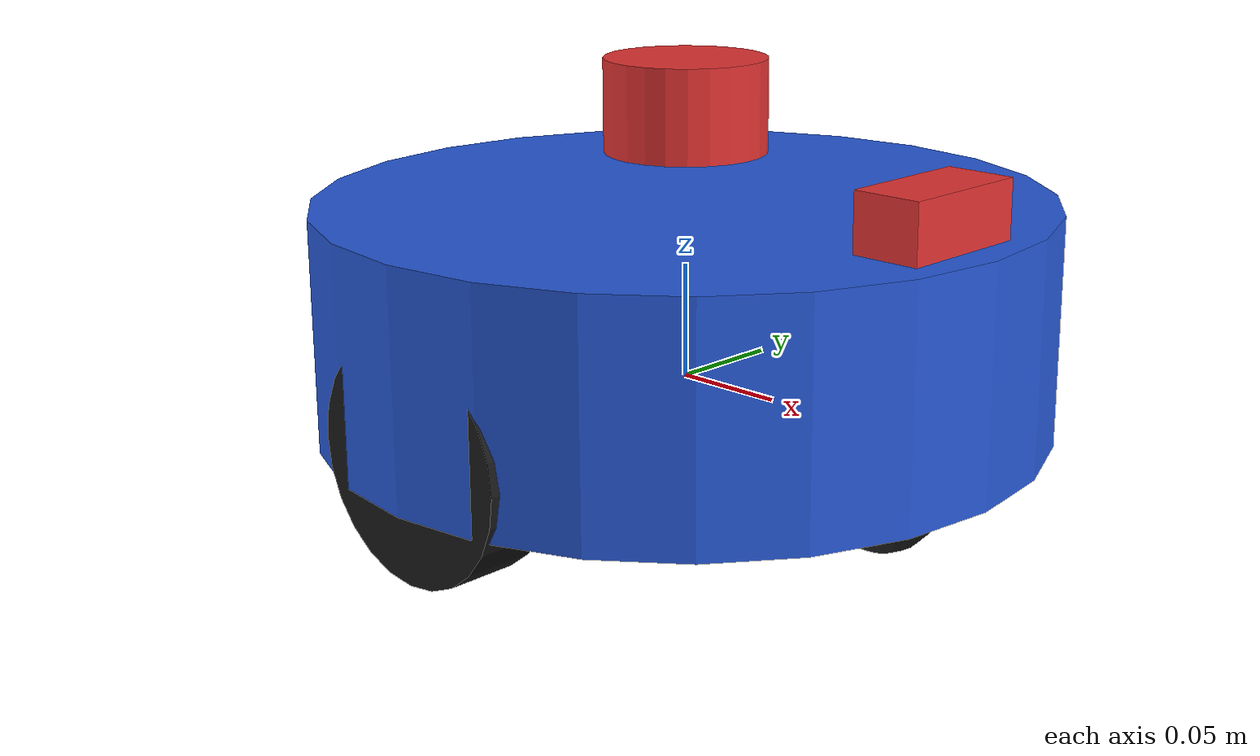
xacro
<?xml version="1.0"?>
<robot xmlns:xacro="http://www.ros.org/wiki/xacro" name="diffbot">

  <xacro:arg name="enable_camera" default="false"/>
  <!-- frame_id the lidar plugin stamps on /scan. MUST equal the link name "laser"; the arg exists only so
       scripts/fault_injection.sh can break it on purpose and show what happens. -->
  <xacro:arg name="lidar_frame" default="laser"/>

  <!-- ===================== parameters ===================== -->
  <xacro:property name="limits" value="${xacro.load_yaml('$(find robot_description)/config/robot_limits.yaml')}"/>
  <xacro:property name="v_max" value="${limits['/**']['ros__parameters']['max_linear_velocity']}"/>
  <xacro:property name="w_max" value="${limits['/**']['ros__parameters']['max_angular_velocity']}"/>

  <xacro:property name="base_radius" value="0.16"/>
  <xacro:property name="base_height" value="0.10"/>
  <xacro:property name="base_z"      value="0.03"/>   <!-- chassis center above base_link origin (axle height) -->
  <xacro:property name="base_mass"   value="5.0"/>

  <xacro:property name="wheel_radius" value="0.05"/>
  <xacro:property name="wheel_width"  value="0.03"/>
  <xacro:property name="wheel_y"      value="0.14"/>  <!-- wheel centre offset; wheel outer face stays inside the chassis radius -->
  <xacro:property name="wheel_mass"   value="0.5"/>

  <xacro:property name="caster_radius" value="0.025"/>
  <xacro:property name="caster_x"      value="0.11"/>
  <xacro:property name="caster_mass"   value="0.1"/>

  <!-- wheel speed needed for v_max and w_max simultaneously (rad/s) -->
  <xacro:property name="wheel_vel_limit" value="${v_max/wheel_radius + w_max*wheel_y/wheel_radius}"/>

  <!-- ===================== materials ===================== -->
  <material name="chassis"><color rgba="0.15 0.35 0.85 1.0"/></material>
  <material name="wheel"><color rgba="0.1 0.1 0.1 1.0"/></material>
  <material name="sensor"><color rgba="0.9 0.2 0.2 1.0"/></material>

  <!-- ===================== links ===================== -->
  <link name="base_link">
    <visual>
      <origin xyz="0 0 ${base_z}" rpy="0 0 0"/>
      <geometry><cylinder radius="${base_radius}" length="${base_height}"/></geometry>
      <material name="chassis"/>
    </visual>
    <!-- unnamed on purpose: becomes "base_link_collision" in SDF, referenced by the contact sensor below -->
    <collision>
      <origin xyz="0 0 ${base_z}" rpy="0 0 0"/>
      <geometry><cylinder radius="${base_radius}" length="${base_height}"/></geometry>
    </collision>
    <inertial>
      <origin xyz="0 0 ${base_z}" rpy="0 0 0"/>
      <mass value="${base_mass}"/>
      <inertia ixx="${base_mass*(3*base_radius*base_radius + base_height*base_height)/12.0}" ixy="0" ixz="0"
               iyy="${base_mass*(3*base_radius*base_radius + base_height*base_height)/12.0}" iyz="0"
               izz="${base_mass*base_radius*base_radius/2.0}"/>
    </inertial>
  </link>

  <xacro:macro name="wheel" params="name y_sign">
    <link name="${name}">
      <visual>
        <geometry><cylinder radius="${wheel_radius}" length="${wheel_width}"/></geometry>
        <material name="wheel"/>
      </visual>
      <collision>
        <geometry><cylinder radius="${wheel_radius}" length="${wheel_width}"/></geometry>
      </collision>
      <inertial>
        <mass value="${wheel_mass}"/>
        <inertia ixx="${wheel_mass*(3*wheel_radius*wheel_radius + wheel_width*wheel_width)/12.0}" ixy="0" ixz="0"
                 iyy="${wheel_mass*(3*wheel_radius*wheel_radius + wheel_width*wheel_width)/12.0}" iyz="0"
                 izz="${wheel_mass*wheel_radius*wheel_radius/2.0}"/>
      </inertial>
    </link>
    <joint name="${name}_joint" type="continuous">
      <parent link="base_link"/>
      <child link="${name}"/>
      <origin xyz="0 ${y_sign*wheel_y} 0" rpy="${-pi/2} 0 0"/>
      <axis xyz="0 0 1"/>
      <limit effort="5.0" velocity="${wheel_vel_limit}"/>
      <dynamics damping="0.01" friction="0.0"/>
    </joint>
  </xacro:macro>

  <xacro:wheel name="left_wheel"  y_sign="1"/>
  <xacro:wheel name="right_wheel" y_sign="-1"/>

  <xacro:macro name="caster" params="name x">
    <link name="${name}">
      <visual><geometry><sphere radius="${caster_radius}"/></geometry><material name="wheel"/></visual>
      <collision><geometry><sphere radius="${caster_radius}"/></geometry></collision>
      <inertial>
        <mass value="${caster_mass}"/>
        <inertia ixx="${0.4*caster_mass*caster_radius*caster_radius}" ixy="0" ixz="0"
                 iyy="${0.4*caster_mass*caster_radius*caster_radius}" iyz="0"
                 izz="${0.4*caster_mass*caster_radius*caster_radius}"/>
      </inertial>
    </link>
    <joint name="${name}_joint" type="fixed">
      <parent link="base_link"/>
      <child link="${name}"/>
      <origin xyz="${x} 0 ${caster_radius - wheel_radius}" rpy="0 0 0"/>
    </joint>
    <gazebo reference="${name}">
      <mu1>0.0</mu1><mu2>0.0</mu2><kp>1000000.0</kp><kd>100.0</kd>
    </gazebo>
  </xacro:macro>

  <xacro:caster name="caster_front" x="${caster_x}"/>
  <xacro:caster name="caster_rear"  x="${-caster_x}"/>

  <!-- 2D lidar: mounted above the chassis top so beams never hit the robot itself -->
  <link name="laser">
    <visual>
      <geometry><cylinder radius="0.035" length="0.04"/></geometry>
      <material name="sensor"/>
    </visual>
    <inertial>
      <mass value="0.1"/>
      <inertia ixx="1e-4" ixy="0" ixz="0" iyy="1e-4" iyz="0" izz="1e-4"/>
    </inertial>
  </link>
  <joint name="laser_joint" type="fixed">
    <parent link="base_link"/>
    <child link="laser"/>
    <origin xyz="0 0 0.12" rpy="0 0 0"/>
  </joint>

  <!-- RGB camera (link and TF always present; the Gazebo sensor needs enable_camera:=true) -->
  <link name="camera">
    <visual>
      <geometry><box size="0.03 0.06 0.03"/></geometry>
      <material name="sensor"/>
    </visual>
    <inertial>
      <mass value="0.05"/>
      <inertia ixx="1e-5" ixy="0" ixz="0" iyy="1e-5" iyz="0" izz="1e-5"/>
    </inertial>
  </link>
  <joint name="camera_joint" type="fixed">
    <parent link="base_link"/>
    <child link="camera"/>
    <origin xyz="0.13 0 0.09" rpy="0 0 0"/>
  </joint>

  <!-- ===================== gazebo ===================== -->
  <gazebo reference="left_wheel">
    <mu1>1.0</mu1><mu2>1.0</mu2><kp>500000.0</kp><kd>10.0</kd><minDepth>0.001</minDepth>
  </gazebo>
  <gazebo reference="right_wheel">
    <mu1>1.0</mu1><mu2>1.0</mu2><kp>500000.0</kp><kd>10.0</kd><minDepth>0.001</minDepth>
  </gazebo>

  <gazebo reference="base_link">
    <material>Gazebo/Blue</material>
    <!-- Ground-truth collision detector: contacts of the chassis only (wheels/casters excluded) -->
    <sensor name="bumper" type="contact">
      <always_on>true</always_on>
      <update_rate>50</update_rate>
      <contact><collision>base_link_collision</collision></contact>
      <plugin name="bumper_plugin" filename="libgazebo_ros_bumper.so">
        <ros><namespace>/</namespace><remapping>bumper_states:=bumper_states</remapping></ros>
        <frame_name>base_link</frame_name>
      </plugin>
    </sensor>
  </gazebo>

  <gazebo reference="laser">
    <sensor name="lidar" type="ray">
      <always_on>true</always_on>
      <visualize>false</visualize>
      <update_rate>10</update_rate>
      <ray>
        <scan>
          <horizontal>
            <samples>360</samples>
            <resolution>1</resolution>
            <!-- [-180 deg, +179 deg] -> exactly 1 deg increment, 360 samples -->
            <min_angle>-3.14159265</min_angle>
            <max_angle>3.12413936</max_angle>
          </horizontal>
        </scan>
        <range><min>0.12</min><max>6.0</max><resolution>0.01</resolution></range>
        <noise><type>gaussian</type><mean>0.0</mean><stddev>0.005</stddev></noise>
      </ray>
      <plugin name="lidar_plugin" filename="libgazebo_ros_ray_sensor.so">
        <ros><namespace>/</namespace><remapping>~/out:=scan</remapping></ros>
        <output_type>sensor_msgs/LaserScan</output_type>
        <frame_name>$(arg lidar_frame)</frame_name>
      </plugin>
    </sensor>
  </gazebo>

  <xacro:if value="$(arg enable_camera)">
    <gazebo reference="camera">
      <sensor name="rgb_camera" type="camera">
        <always_on>true</always_on>
        <visualize>false</visualize>
        <update_rate>10</update_rate>
        <camera>
          <horizontal_fov>1.047</horizontal_fov>
          <image><width>320</width><height>240</height><format>R8G8B8</format></image>
          <clip><near>0.05</near><far>10.0</far></clip>
        </camera>
        <plugin name="camera_plugin" filename="libgazebo_ros_camera.so">
          <ros><namespace>/camera</namespace></ros>
          <frame_name>camera</frame_name>
        </plugin>
      </sensor>
    </gazebo>
  </xacro:if>

  <gazebo>
    <plugin name="diff_drive" filename="libgazebo_ros_diff_drive.so">
      <ros><namespace>/</namespace></ros>
      <update_rate>50</update_rate>
      <left_joint>left_wheel_joint</left_joint>
      <right_joint>right_wheel_joint</right_joint>
      <wheel_separation>${2*wheel_y}</wheel_separation>
      <wheel_diameter>${2*wheel_radius}</wheel_diameter>
      <max_wheel_torque>5.0</max_wheel_torque>
      <max_wheel_acceleration>20.0</max_wheel_acceleration>
      <publish_odom>true</publish_odom>
      <publish_odom_tf>true</publish_odom_tf>
      <publish_wheel_tf>true</publish_wheel_tf>
      <odometry_frame>odom</odometry_frame>
      <robot_base_frame>base_link</robot_base_frame>
      <!-- 1 = WORLD: ground-truth odometry (localization is out of scope) -->
      <odometry_source>1</odometry_source>
    </plugin>
  </gazebo>

</robot>
